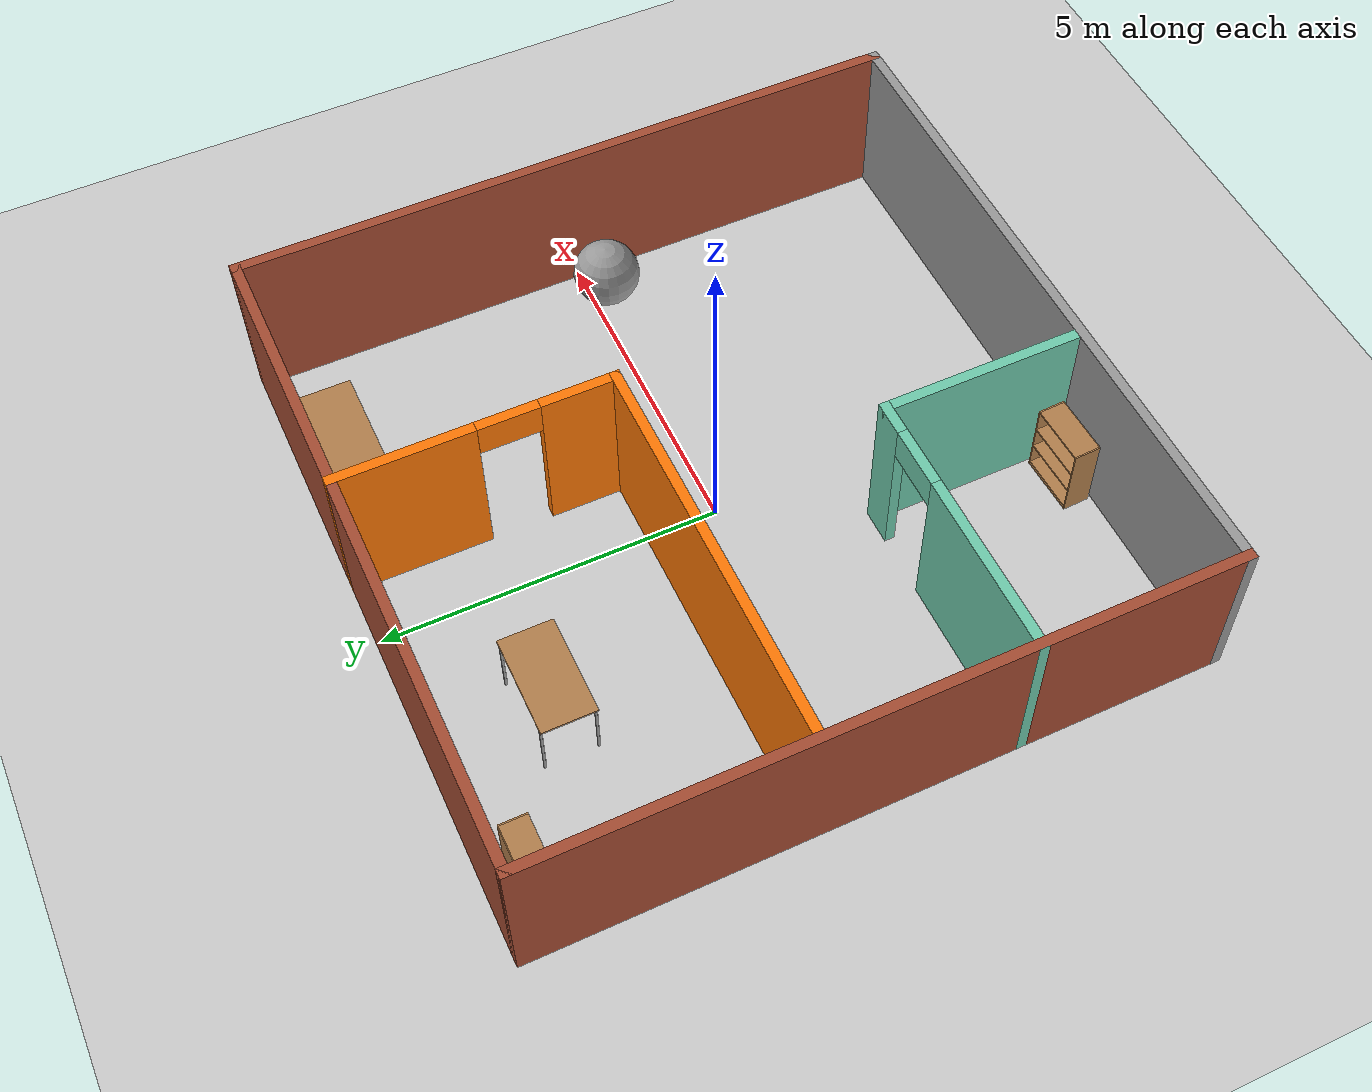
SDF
<sdf version="1.6">
 <world name="default">
  <light name="sun" type="directional">
   <pose>0 0 10 0 -0 0</pose>
   <diffuse>0.8 0.8 0.8 1</diffuse>
   <specular>0.2 0.2 0.2 1</specular>
   <attenuation>
    <range>1000</range>
    <constant>0.9</constant>
    <linear>0.01</linear>
    <quadratic>0.001</quadratic>
   </attenuation>
   <direction>-0.5 0.1 -0.9</direction>
  </light>
  <model name="ground_plane">
   <static>1</static>
   <link name="link">
    <collision name="collision">
     <geometry><plane><normal>0 0 1</normal><size>100 100</size></plane></geometry>
     <surface><friction><ode><mu>100</mu><mu2>50</mu2></ode></friction></surface>
    </collision>
    <visual name="visual">
     <cast_shadows>0</cast_shadows>
     <geometry><plane><normal>0 0 1</normal><size>100 100</size></plane></geometry>
     <material>
      <script><uri>file://media/materials/scripts/gazebo.material</uri><name>Gazebo/Grey</name></script>
     </material>
    </visual>
   </link>
  </model>
  <gravity>0 0 -9.8</gravity>
  <magnetic_field>6e-06 2.3e-05 -4.2e-05</magnetic_field>
  <atmosphere type="adiabatic"/>
  <physics name="default_physics" default="0" type="ode">
   <max_step_size>0.001</max_step_size>
   <real_time_factor>1</real_time_factor>
   <real_time_update_rate>1000</real_time_update_rate>
  </physics>
  <scene><ambient>0.4 0.4 0.4 1</ambient><background>0.7 0.7 0.7 1</background><shadows>1</shadows></scene>
  <spherical_coordinates>
   <surface_model>EARTH_WGS84</surface_model>
   <latitude_deg>0</latitude_deg>
   <longitude_deg>0</longitude_deg>
   <elevation>0</elevation>
   <heading_deg>0</heading_deg>
  </spherical_coordinates>
  <model name="building_map">
   <link name="Wall_0">
    <collision name="Wall_0_Collision">
     <geometry><box><size>10.15 0.15 2.5</size></box></geometry>
     <pose>0 0 1.25 0 -0 0</pose>
    </collision>
    <visual name="Wall_0_Visual">
     <pose>0 0 1.25 0 -0 0</pose>
     <geometry><box><size>10.15 0.15 2.5</size></box></geometry>
     <material>
      <script><uri>file://media/materials/scripts/gazebo.material</uri><name>Gazebo/Grey</name></script>
      <ambient>1 1 1 1</ambient>
     </material>
     <meta><layer>0</layer></meta>
    </visual>
    <pose>0 -5 0 0 -0 0</pose>
   </link>
   <link name="Wall_11">
    <pose>1 3 0 0 -0 1.5708</pose>
    <visual name="Wall_11_Visual_0">
     <pose>-1.4837 0 1.25 0 -0 0</pose>
     <geometry><box><size>1.1826 0.15 2.5</size></box></geometry>
     <material>
      <script><uri>file://media/materials/scripts/gazebo.material</uri><name>Gazebo/Grey</name></script>
      <ambient>0.996078 0.47451 0.0196078 1</ambient>
     </material>
     <meta><layer>0</layer></meta>
    </visual>
    <collision name="Wall_11_Collision_0">
     <geometry><box><size>1.1826 0.15 2.5</size></box></geometry>
     <pose>-1.4837 0 1.25 0 -0 0</pose>
    </collision>
    <visual name="Wall_11_Visual_1">
     <pose>1.0413 0 1.25 0 -0 0</pose>
     <geometry><box><size>2.0674 0.15 2.5</size></box></geometry>
     <material>
      <script><uri>file://media/materials/scripts/gazebo.material</uri><name>Gazebo/Grey</name></script>
      <ambient>0.996078 0.47451 0.0196078 1</ambient>
     </material>
     <meta><layer>0</layer></meta>
    </visual>
    <collision name="Wall_11_Collision_1">
     <geometry><box><size>2.0674 0.15 2.5</size></box></geometry>
     <pose>1.0413 0 1.25 0 -0 0</pose>
    </collision>
    <visual name="Wall_11_Visual_2">
     <pose>-0.442403 0 2.25 0 -0 0</pose>
     <geometry><box><size>0.9 0.15 0.5</size></box></geometry>
     <material>
      <script><uri>file://media/materials/scripts/gazebo.material</uri><name>Gazebo/Grey</name></script>
      <ambient>0.996078 0.47451 0.0196078 1</ambient>
     </material>
     <meta><layer>0</layer></meta>
    </visual>
    <collision name="Wall_11_Collision_2">
     <geometry><box><size>0.9 0.15 0.5</size></box></geometry>
     <pose>-0.442403 0 2.25 0 -0 0</pose>
    </collision>
   </link>
   <link name="Wall_14">
    <pose>-3 -2 0 0 -0 0</pose>
    <visual name="Wall_14_Visual_0">
     <pose>-0.711182 0 1.25 0 -0 0</pose>
     <geometry><box><size>2.72763 0.15 2.5</size></box></geometry>
     <material>
      <script><uri>file://media/materials/scripts/gazebo.material</uri><name>Gazebo/Grey</name></script>
      <ambient>0.435294 0.796078 0.67451 1</ambient>
     </material>
     <meta><layer>0</layer></meta>
    </visual>
    <collision name="Wall_14_Collision_0">
     <geometry><box><size>2.72763 0.15 2.5</size></box></geometry>
     <pose>-0.711182 0 1.25 0 -0 0</pose>
    </collision>
    <visual name="Wall_14_Visual_1">
     <pose>1.81382 0 1.25 0 -0 0</pose>
     <geometry><box><size>0.522365 0.15 2.5</size></box></geometry>
     <material>
      <script><uri>file://media/materials/scripts/gazebo.material</uri><name>Gazebo/Grey</name></script>
      <ambient>0.435294 0.796078 0.67451 1</ambient>
     </material>
     <meta><layer>0</layer></meta>
    </visual>
    <collision name="Wall_14_Collision_1">
     <geometry><box><size>0.522365 0.15 2.5</size></box></geometry>
     <pose>1.81382 0 1.25 0 -0 0</pose>
    </collision>
    <visual name="Wall_14_Visual_2">
     <pose>1.10264 0 2.25 0 -0 0</pose>
     <geometry><box><size>0.9 0.15 0.5</size></box></geometry>
     <material>
      <script><uri>file://media/materials/scripts/gazebo.material</uri><name>Gazebo/Grey</name></script>
      <ambient>0.435294 0.796078 0.67451 1</ambient>
     </material>
     <meta><layer>0</layer></meta>
    </visual>
    <collision name="Wall_14_Collision_2">
     <geometry><box><size>0.9 0.15 0.5</size></box></geometry>
     <pose>1.10264 0 2.25 0 -0 0</pose>
    </collision>
   </link>
   <link name="Wall_16">
    <collision name="Wall_16_Collision">
     <geometry><box><size>3.15 0.15 2.5</size></box></geometry>
     <pose>0 0 1.25 0 -0 0</pose>
    </collision>
    <visual name="Wall_16_Visual">
     <pose>0 0 1.25 0 -0 0</pose>
     <geometry><box><size>3.15 0.15 2.5</size></box></geometry>
     <material>
      <script><uri>file://media/materials/scripts/gazebo.material</uri><name>Gazebo/Grey</name></script>
      <ambient>0.435294 0.796078 0.67451 1</ambient>
     </material>
     <meta><layer>0</layer></meta>
    </visual>
    <pose>-1 -3.5 0 0 0 -1.5708</pose>
   </link>
   <link name="Wall_2">
    <collision name="Wall_2_Collision">
     <geometry><box><size>10.15 0.15 2.5</size></box></geometry>
     <pose>0 0 1.25 0 -0 0</pose>
    </collision>
    <visual name="Wall_2_Visual">
     <pose>0 0 1.25 0 -0 0</pose>
     <geometry><box><size>10.15 0.15 2.5</size></box></geometry>
     <material>
      <script><uri>file://media/materials/scripts/gazebo.material</uri><name>Gazebo/Bricks</name></script>
      <ambient>1 1 1 1</ambient>
     </material>
     <meta><layer>0</layer></meta>
    </visual>
    <pose>-5 0 0 0 -0 1.5708</pose>
   </link>
   <link name="Wall_4">
    <collision name="Wall_4_Collision">
     <geometry><box><size>10.15 0.15 2.5</size></box></geometry>
     <pose>0 0 1.25 0 -0 0</pose>
    </collision>
    <visual name="Wall_4_Visual">
     <pose>0 0 1.25 0 -0 0</pose>
     <geometry><box><size>10.15 0.15 2.5</size></box></geometry>
     <material>
      <script><uri>file://media/materials/scripts/gazebo.material</uri><name>Gazebo/Bricks</name></script>
      <ambient>1 1 1 1</ambient>
     </material>
     <meta><layer>0</layer></meta>
    </visual>
    <pose>0 5 0 0 -0 0</pose>
   </link>
   <link name="Wall_6">
    <collision name="Wall_6_Collision">
     <geometry><box><size>10.15 0.15 2.5</size></box></geometry>
     <pose>0 0 1.25 0 -0 0</pose>
    </collision>
    <visual name="Wall_6_Visual">
     <pose>0 0 1.25 0 -0 0</pose>
     <geometry><box><size>10.15 0.15 2.5</size></box></geometry>
     <material>
      <script><uri>file://media/materials/scripts/gazebo.material</uri><name>Gazebo/Bricks</name></script>
      <ambient>1 1 1 1</ambient>
     </material>
     <meta><layer>0</layer></meta>
    </visual>
    <pose>5 0 0 0 0 -1.5708</pose>
   </link>
   <link name="Wall_8">
    <collision name="Wall_8_Collision">
     <geometry><box><size>6.15 0.15 2.5</size></box></geometry>
     <pose>0 0 1.25 0 -0 0</pose>
    </collision>
    <visual name="Wall_8_Visual">
     <pose>0 0 1.25 0 -0 0</pose>
     <geometry><box><size>6.15 0.15 2.5</size></box></geometry>
     <material>
      <script><uri>file://media/materials/scripts/gazebo.material</uri><name>Gazebo/Grey</name></script>
      <ambient>0.996078 0.47451 0.0196078 1</ambient>
     </material>
     <meta><layer>0</layer></meta>
    </visual>
    <pose>-2 1 0 0 -0 0</pose>
   </link>
   <static>1</static>
  </model>
  <model name="table">
   <static>1</static>
   <link name="link">
    <collision name="surface">
     <pose>0 0 1 0 -0 0</pose>
     <geometry><box><size>1.5 0.8 0.03</size></box></geometry>
     <surface><friction><ode><mu>0.6</mu><mu2>0.6</mu2></ode></friction></surface>
    </collision>
    <visual name="visual1">
     <pose>0 0 1 0 -0 0</pose>
     <geometry><box><size>1.5 0.8 0.03</size></box></geometry>
     <material>
      <script><uri>file://media/materials/scripts/gazebo.material</uri><name>Gazebo/Wood</name></script>
     </material>
    </visual>
    <collision name="front_left_leg">
     <pose>0.68 0.38 0.5 0 -0 0</pose>
     <geometry><cylinder><radius>0.02</radius><length>1</length></cylinder></geometry>
    </collision>
    <visual name="front_left_leg">
     <pose>0.68 0.38 0.5 0 -0 0</pose>
     <geometry><cylinder><radius>0.02</radius><length>1</length></cylinder></geometry>
     <material>
      <script><uri>file://media/materials/scripts/gazebo.material</uri><name>Gazebo/Grey</name></script>
     </material>
    </visual>
    <collision name="front_right_leg">
     <pose>0.68 -0.38 0.5 0 -0 0</pose>
     <geometry><cylinder><radius>0.02</radius><length>1</length></cylinder></geometry>
    </collision>
    <visual name="front_right_leg">
     <pose>0.68 -0.38 0.5 0 -0 0</pose>
     <geometry><cylinder><radius>0.02</radius><length>1</length></cylinder></geometry>
     <material>
      <script><uri>file://media/materials/scripts/gazebo.material</uri><name>Gazebo/Grey</name></script>
     </material>
    </visual>
    <collision name="back_right_leg">
     <pose>-0.68 -0.38 0.5 0 -0 0</pose>
     <geometry><cylinder><radius>0.02</radius><length>1</length></cylinder></geometry>
    </collision>
    <visual name="back_right_leg">
     <pose>-0.68 -0.38 0.5 0 -0 0</pose>
     <geometry><cylinder><radius>0.02</radius><length>1</length></cylinder></geometry>
     <material>
      <script><uri>file://media/materials/scripts/gazebo.material</uri><name>Gazebo/Grey</name></script>
     </material>
    </visual>
    <collision name="back_left_leg">
     <pose>-0.68 0.38 0.5 0 -0 0</pose>
     <geometry><cylinder><radius>0.02</radius><length>1</length></cylinder></geometry>
    </collision>
    <visual name="back_left_leg">
     <pose>-0.68 0.38 0.5 0 -0 0</pose>
     <geometry><cylinder><radius>0.02</radius><length>1</length></cylinder></geometry>
     <material>
      <script><uri>file://media/materials/scripts/gazebo.material</uri><name>Gazebo/Grey</name></script>
     </material>
    </visual>
   </link>
   <pose>-2.01022 3.34155 0 0 -0 0</pose>
  </model>
  <model name="bookshelf">
   <static>1</static>
   <link name="link">
    <inertial><mass>1</mass></inertial>
    <collision name="back">
     <pose>0 0.005 0.6 0 -0 0</pose>
     <geometry><box><size>0.9 0.01 1.2</size></box></geometry>
    </collision>
    <visual name="visual1">
     <pose>0 0.005 0.6 0 -0 0</pose>
     <geometry><box><size>0.9 0.01 1.2</size></box></geometry>
     <material>
      <script><uri>file://media/materials/scripts/gazebo.material</uri><name>Gazebo/Wood</name></script>
     </material>
    </visual>
    <collision name="left_side">
     <pose>0.45 -0.195 0.6 0 -0 0</pose>
     <geometry><box><size>0.02 0.4 1.2</size></box></geometry>
    </collision>
    <visual name="visual2">
     <pose>0.45 -0.195 0.6 0 -0 0</pose>
     <geometry><box><size>0.02 0.4 1.2</size></box></geometry>
     <material>
      <script><uri>file://media/materials/scripts/gazebo.material</uri><name>Gazebo/Wood</name></script>
     </material>
    </visual>
    <collision name="right_side">
     <pose>-0.45 -0.195 0.6 0 -0 0</pose>
     <geometry><box><size>0.02 0.4 1.2</size></box></geometry>
    </collision>
    <visual name="visual3">
     <pose>-0.45 -0.195 0.6 0 -0 0</pose>
     <geometry><box><size>0.02 0.4 1.2</size></box></geometry>
     <material>
      <script><uri>file://media/materials/scripts/gazebo.material</uri><name>Gazebo/Wood</name></script>
     </material>
    </visual>
    <collision name="bottom">
     <pose>0 -0.195 0.03 0 -0 0</pose>
     <geometry><box><size>0.88 0.4 0.06</size></box></geometry>
    </collision>
    <visual name="visual4">
     <pose>0 -0.195 0.03 0 -0 0</pose>
     <geometry><box><size>0.88 0.4 0.06</size></box></geometry>
     <material>
      <script><uri>file://media/materials/scripts/gazebo.material</uri><name>Gazebo/Wood</name></script>
     </material>
    </visual>
    <collision name="top">
     <pose>0 -0.195 1.19 0 -0 0</pose>
     <geometry><box><size>0.88 0.4 0.02</size></box></geometry>
    </collision>
    <visual name="visual5">
     <pose>0 -0.195 1.19 0 -0 0</pose>
     <geometry><box><size>0.88 0.4 0.02</size></box></geometry>
     <material>
      <script><uri>file://media/materials/scripts/gazebo.material</uri><name>Gazebo/Wood</name></script>
     </material>
    </visual>
    <collision name="low_shelf">
     <pose>0 -0.195 0.43 0 -0 0</pose>
     <geometry><box><size>0.88 0.4 0.02</size></box></geometry>
    </collision>
    <visual name="visual6">
     <pose>0 -0.195 0.43 0 -0 0</pose>
     <geometry><box><size>0.88 0.4 0.02</size></box></geometry>
     <material>
      <script><uri>file://media/materials/scripts/gazebo.material</uri><name>Gazebo/Wood</name></script>
     </material>
    </visual>
    <collision name="high_shelf">
     <pose>0 -0.195 0.8 0 -0 0</pose>
     <geometry><box><size>0.88 0.4 0.02</size></box></geometry>
    </collision>
    <visual name="visual7">
     <pose>0 -0.195 0.8 0 -0 0</pose>
     <geometry><box><size>0.88 0.4 0.02</size></box></geometry>
     <material>
      <script><uri>file://media/materials/scripts/gazebo.material</uri><name>Gazebo/Wood</name></script>
     </material>
    </visual>
   </link>
   <pose>-4.24965 4.71251 0 0 -0 0</pose>
  </model>
  <model name="cabinet">
   <static>1</static>
   <link name="cabinet_bottom_plate">
    <inertial>
     <pose>0 0 -1 0 -0 0</pose>
     <inertia><ixx>2.05</ixx><ixy>0</ixy><ixz>0</ixz><iyy>2.05</iyy><iyz>0</iyz><izz>2.05</izz></inertia>
     <mass>25</mass>
    </inertial>
    <collision name="cabinet_bottom_plate_geom">
     <pose>0 0 0.01 0 -0 0</pose>
     <geometry><box><size>0.45 0.45 0.02</size></box></geometry>
    </collision>
    <visual name="cabinet_bottom_plate_geom_visual">
     <pose>0 0 0.01 0 -0 0</pose>
     <geometry><box><size>0.45 0.45 0.02</size></box></geometry>
     <material>
      <script><uri>file://media/materials/scripts/gazebo.material</uri><name>Gazebo/Wood</name></script>
     </material>
    </visual>
    <collision name="cabinet_bottom_plate_geom_cabinet_back_plate">
     <pose>0.235 0 0.51 0 -0 0</pose>
     <geometry><box><size>0.02 0.45 1.02</size></box></geometry>
    </collision>
    <visual name="cabinet_bottom_plate_geom_cabinet_back_plate_visual">
     <pose>0.235 0 0.51 0 -0 0</pose>
     <geometry><box><size>0.02 0.45 1.02</size></box></geometry>
     <material>
      <script><uri>file://media/materials/scripts/gazebo.material</uri><name>Gazebo/Wood</name></script>
     </material>
    </visual>
    <collision name="cabinet_bottom_plate_geom_cabinet_left_plate">
     <pose>0 0.235 0.51 0 -0 0</pose>
     <geometry><box><size>0.45 0.02 1.02</size></box></geometry>
    </collision>
    <visual name="cabinet_bottom_plate_geom_cabinet_left_plate_visual">
     <pose>0 0.235 0.51 0 -0 0</pose>
     <geometry><box><size>0.45 0.02 1.02</size></box></geometry>
     <material>
      <script><uri>file://media/materials/scripts/gazebo.material</uri><name>Gazebo/Wood</name></script>
     </material>
    </visual>
    <collision name="cabinet_bottom_plate_geom_cabinet_middle_plate">
     <pose>0 0 0.51 0 -0 0</pose>
     <geometry><box><size>0.45 0.45 0.02</size></box></geometry>
    </collision>
    <visual name="cabinet_bottom_plate_geom_cabinet_middle_plate_visual">
     <pose>0 0 0.51 0 -0 0</pose>
     <geometry><box><size>0.45 0.45 0.02</size></box></geometry>
     <material>
      <script><uri>file://media/materials/scripts/gazebo.material</uri><name>Gazebo/Wood</name></script>
     </material>
    </visual>
    <collision name="cabinet_bottom_plate_geom_cabinet_right_plate">
     <pose>0 -0.235 0.51 0 -0 0</pose>
     <geometry><box><size>0.45 0.02 1.02</size></box></geometry>
    </collision>
    <visual name="cabinet_bottom_plate_geom_cabinet_right_plate_visual">
     <pose>0 -0.235 0.51 0 -0 0</pose>
     <geometry><box><size>0.45 0.02 1.02</size></box></geometry>
     <material>
      <script><uri>file://media/materials/scripts/gazebo.material</uri><name>Gazebo/Wood</name></script>
     </material>
    </visual>
    <collision name="cabinet_bottom_plate_geom_cabinet_top_plate">
     <pose>0 0 1.01 0 -0 0</pose>
     <geometry><box><size>0.45 0.45 0.02</size></box></geometry>
    </collision>
    <visual name="cabinet_bottom_plate_geom_cabinet_top_plate_visual">
     <pose>0 0 1.01 0 -0 0</pose>
     <geometry><box><size>0.45 0.45 0.02</size></box></geometry>
     <material>
      <script><uri>file://media/materials/scripts/gazebo.material</uri><name>Gazebo/Wood</name></script>
     </material>
    </visual>
   </link>
   <pose>-4.65445 0.62032 0 0 -0 0</pose>
  </model>
  <model name="unit_sphere">
   <pose>4.39899 -0.245343 0.5 0 -0 0</pose>
   <link name="link">
    <inertial>
     <mass>1</mass>
     <inertia><ixx>0.1</ixx><ixy>0</ixy><ixz>0</ixz><iyy>0.1</iyy><iyz>0</iyz><izz>0.1</izz></inertia>
    </inertial>
    <collision name="collision"><geometry><sphere><radius>0.5</radius></sphere></geometry></collision>
    <visual name="visual">
     <geometry><sphere><radius>0.5</radius></sphere></geometry>
     <material>
      <script><name>Gazebo/Grey</name><uri>file://media/materials/scripts/gazebo.material</uri></script>
     </material>
    </visual>
   </link>
  </model>
  <model name="bookshelf_clone">
   <static>1</static>
   <link name="link">
    <inertial><mass>1</mass></inertial>
    <collision name="back">
     <pose>0 0.005 0.6 0 -0 0</pose>
     <geometry><box><size>0.9 0.01 1.2</size></box></geometry>
    </collision>
    <visual name="visual1">
     <pose>0 0.005 0.6 0 -0 0</pose>
     <geometry><box><size>0.9 0.01 1.2</size></box></geometry>
     <material>
      <script><uri>file://media/materials/scripts/gazebo.material</uri><name>Gazebo/Wood</name></script>
     </material>
    </visual>
    <collision name="left_side">
     <pose>0.45 -0.195 0.6 0 -0 0</pose>
     <geometry><box><size>0.02 0.4 1.2</size></box></geometry>
    </collision>
    <visual name="visual2">
     <pose>0.45 -0.195 0.6 0 -0 0</pose>
     <geometry><box><size>0.02 0.4 1.2</size></box></geometry>
     <material>
      <script><uri>file://media/materials/scripts/gazebo.material</uri><name>Gazebo/Wood</name></script>
     </material>
    </visual>
    <collision name="right_side">
     <pose>-0.45 -0.195 0.6 0 -0 0</pose>
     <geometry><box><size>0.02 0.4 1.2</size></box></geometry>
    </collision>
    <visual name="visual3">
     <pose>-0.45 -0.195 0.6 0 -0 0</pose>
     <geometry><box><size>0.02 0.4 1.2</size></box></geometry>
     <material>
      <script><uri>file://media/materials/scripts/gazebo.material</uri><name>Gazebo/Wood</name></script>
     </material>
    </visual>
    <collision name="bottom">
     <pose>0 -0.195 0.03 0 -0 0</pose>
     <geometry><box><size>0.88 0.4 0.06</size></box></geometry>
    </collision>
    <visual name="visual4">
     <pose>0 -0.195 0.03 0 -0 0</pose>
     <geometry><box><size>0.88 0.4 0.06</size></box></geometry>
     <material>
      <script><uri>file://media/materials/scripts/gazebo.material</uri><name>Gazebo/Wood</name></script>
     </material>
    </visual>
    <collision name="top">
     <pose>0 -0.195 1.19 0 -0 0</pose>
     <geometry><box><size>0.88 0.4 0.02</size></box></geometry>
    </collision>
    <visual name="visual5">
     <pose>0 -0.195 1.19 0 -0 0</pose>
     <geometry><box><size>0.88 0.4 0.02</size></box></geometry>
     <material>
      <script><uri>file://media/materials/scripts/gazebo.material</uri><name>Gazebo/Wood</name></script>
     </material>
    </visual>
    <collision name="low_shelf">
     <pose>0 -0.195 0.43 0 -0 0</pose>
     <geometry><box><size>0.88 0.4 0.02</size></box></geometry>
    </collision>
    <visual name="visual6">
     <pose>0 -0.195 0.43 0 -0 0</pose>
     <geometry><box><size>0.88 0.4 0.02</size></box></geometry>
     <material>
      <script><uri>file://media/materials/scripts/gazebo.material</uri><name>Gazebo/Wood</name></script>
     </material>
    </visual>
    <collision name="high_shelf">
     <pose>0 -0.195 0.8 0 -0 0</pose>
     <geometry><box><size>0.88 0.4 0.02</size></box></geometry>
    </collision>
    <visual name="visual7">
     <pose>0 -0.195 0.8 0 -0 0</pose>
     <geometry><box><size>0.88 0.4 0.02</size></box></geometry>
     <material>
      <script><uri>file://media/materials/scripts/gazebo.material</uri><name>Gazebo/Wood</name></script>
     </material>
    </visual>
   </link>
   <pose>-1.5786 -4.84972 0 0 0 -3.10592</pose>
  </model>
  <model name="table_clone">
   <static>1</static>
   <link name="link">
    <collision name="surface">
     <pose>0 0 1 0 -0 0</pose>
     <geometry><box><size>1.5 0.8 0.03</size></box></geometry>
     <surface><friction><ode><mu>0.6</mu><mu2>0.6</mu2></ode></friction></surface>
    </collision>
    <visual name="visual1">
     <pose>0 0 1 0 -0 0</pose>
     <geometry><box><size>1.5 0.8 0.03</size></box></geometry>
     <material>
      <script><uri>file://media/materials/scripts/gazebo.material</uri><name>Gazebo/Wood</name></script>
     </material>
    </visual>
    <collision name="front_left_leg">
     <pose>0.68 0.38 0.5 0 -0 0</pose>
     <geometry><cylinder><radius>0.02</radius><length>1</length></cylinder></geometry>
    </collision>
    <visual name="front_left_leg">
     <pose>0.68 0.38 0.5 0 -0 0</pose>
     <geometry><cylinder><radius>0.02</radius><length>1</length></cylinder></geometry>
     <material>
      <script><uri>file://media/materials/scripts/gazebo.material</uri><name>Gazebo/Grey</name></script>
     </material>
    </visual>
    <collision name="front_right_leg">
     <pose>0.68 -0.38 0.5 0 -0 0</pose>
     <geometry><cylinder><radius>0.02</radius><length>1</length></cylinder></geometry>
    </collision>
    <visual name="front_right_leg">
     <pose>0.68 -0.38 0.5 0 -0 0</pose>
     <geometry><cylinder><radius>0.02</radius><length>1</length></cylinder></geometry>
     <material>
      <script><uri>file://media/materials/scripts/gazebo.material</uri><name>Gazebo/Grey</name></script>
     </material>
    </visual>
    <collision name="back_right_leg">
     <pose>-0.68 -0.38 0.5 0 -0 0</pose>
     <geometry><cylinder><radius>0.02</radius><length>1</length></cylinder></geometry>
    </collision>
    <visual name="back_right_leg">
     <pose>-0.68 -0.38 0.5 0 -0 0</pose>
     <geometry><cylinder><radius>0.02</radius><length>1</length></cylinder></geometry>
     <material>
      <script><uri>file://media/materials/scripts/gazebo.material</uri><name>Gazebo/Grey</name></script>
     </material>
    </visual>
    <collision name="back_left_leg">
     <pose>-0.68 0.38 0.5 0 -0 0</pose>
     <geometry><cylinder><radius>0.02</radius><length>1</length></cylinder></geometry>
    </collision>
    <visual name="back_left_leg">
     <pose>-0.68 0.38 0.5 0 -0 0</pose>
     <geometry><cylinder><radius>0.02</radius><length>1</length></cylinder></geometry>
     <material>
      <script><uri>file://media/materials/scripts/gazebo.material</uri><name>Gazebo/Grey</name></script>
     </material>
    </visual>
   </link>
   <pose>2.89969 4.42493 0 0 -0 0</pose>
  </model>
 </world>
</sdf>
